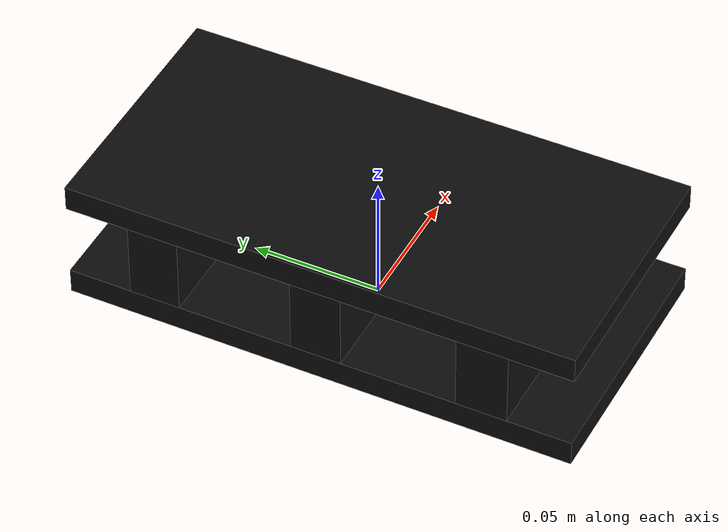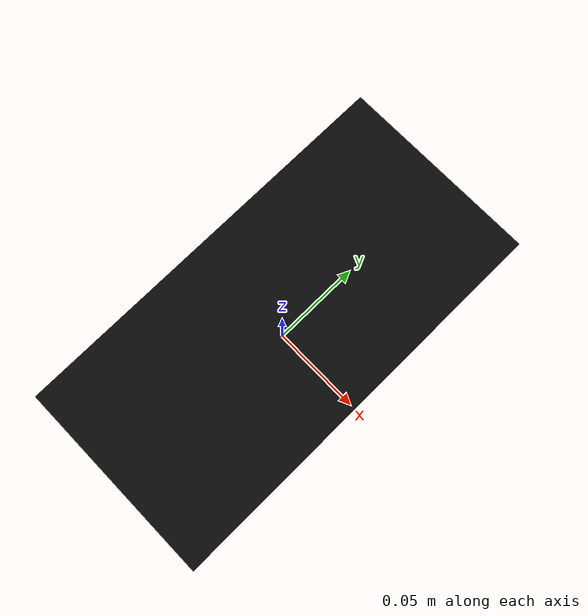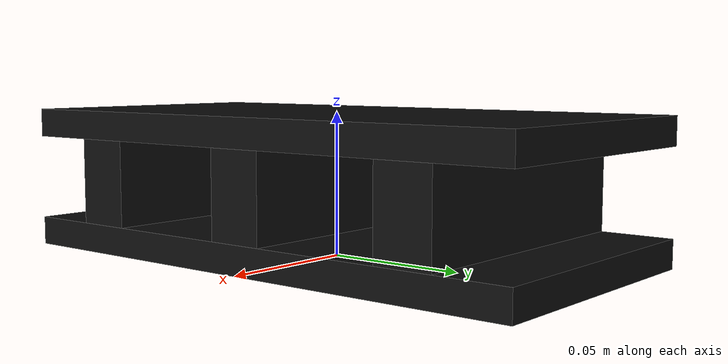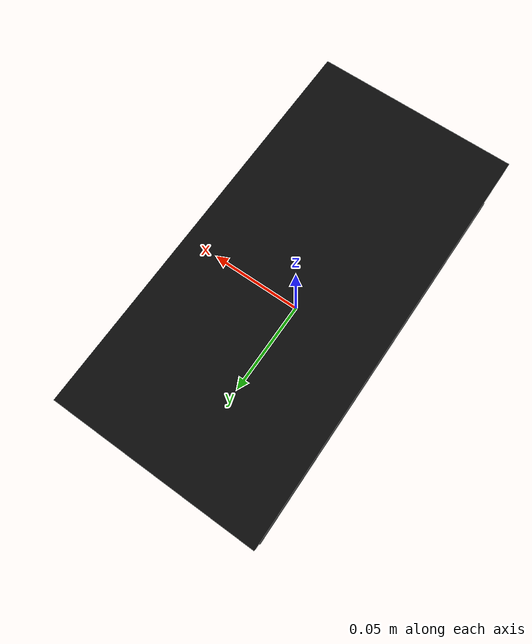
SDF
<?xml version="1.0" ?>
<sdf version="1.5">
  <model name="rescue_block_yellow">
    <static>True</static>
    <link name="link">
      <collision name="top">
        <pose>0 0 0.045  0 0 0</pose>
        <geometry>
          <box> <size> 0.1 0.2 0.010 </size> </box>
        </geometry>
      </collision>
      <collision name="bottom">
        <pose>0 0 0.005  0 0 0</pose>
        <geometry>
          <box> <size> 0.1 0.2 0.010 </size> </box>
        </geometry>
      </collision>
      <collision name="center0">
        <pose>0 0 0.025  0 0 0</pose>
        <geometry>
          <box> <size> 0.1 0.020 0.030 </size> </box>
        </geometry>
      </collision>
      <collision name="center1">
        <pose>0 -0.065 0.025  0 0 0</pose>
        <geometry>
          <box> <size> 0.1 0.020 0.030 </size> </box>
        </geometry>
      </collision>
      <collision name="center2">
        <pose>0 0.065 0.025  0 0 0</pose>
        <geometry>
          <box> <size> 0.1 0.020 0.030 </size> </box>
        </geometry>
      </collision>
      <visual name="top">
        <pose>0 0 0.045  0 0 0</pose>
        <geometry>
          <box> <size> 0.1 0.2 0.010 </size> </box>
        </geometry>
        <material>
          <ambient> .05 .05 .05 1</ambient>
          <diffuse> .05 .05 .05 1</diffuse>
          <specular>0.1 0.1 0.1 1</specular>
        </material>
      </visual>
      <visual name="bottom">
        <pose>0 0 0.005  0 0 0</pose>
        <geometry>
          <box> <size> 0.1 0.2 0.010 </size> </box>
        </geometry>
        <material>
          <ambient> .05 .05 .05 1</ambient>
          <diffuse> .05 .05 .05 1</diffuse>
          <specular>0.1 0.1 0.1 1</specular>
        </material>
      </visual>
      <visual name="center0">
        <pose>0 0 0.025  0 0 0</pose>
        <geometry>
          <box> <size> 0.1 0.020 0.030 </size> </box>
        </geometry>
        <material>
          <ambient> .05 .05 .05 1</ambient>
          <diffuse> .05 .05 .05 1</diffuse>
          <specular>0.1 0.1 0.1 1</specular>
        </material>
      </visual>
      <visual name="center1">
        <pose>0 -0.065 0.025  0 0 0</pose>
        <geometry>
          <box> <size> 0.1 0.020 0.030 </size> </box>
        </geometry>
        <material>
          <ambient> .05 .05 .05 1</ambient>
          <diffuse> .05 .05 .05 1</diffuse>
          <specular>0.1 0.1 0.1 1</specular>
        </material>
      </visual>
      <visual name="center2">
        <pose>0 0.065 0.025  0 0 0</pose>
        <geometry>
          <box> <size> 0.1 0.020 0.030 </size> </box>
        </geometry>
        <material>
          <ambient> .05 .05 .05 1</ambient>
          <diffuse> .05 .05 .05 1</diffuse>
          <specular>0.1 0.1 0.1 1</specular>
        </material>
      </visual>
    </link>
  </model>
</sdf>
